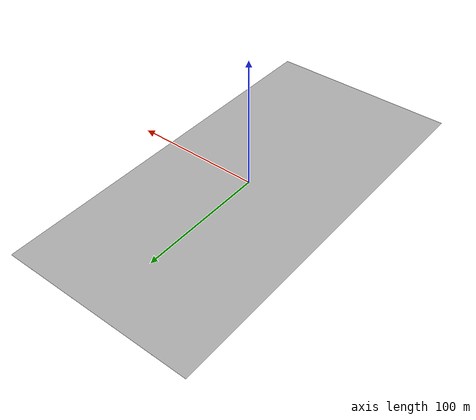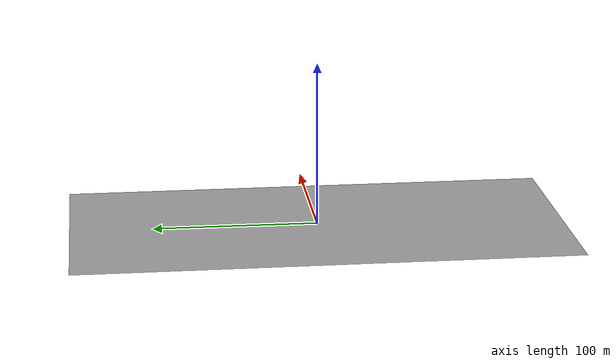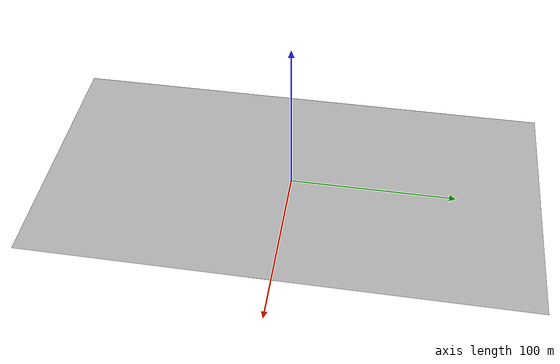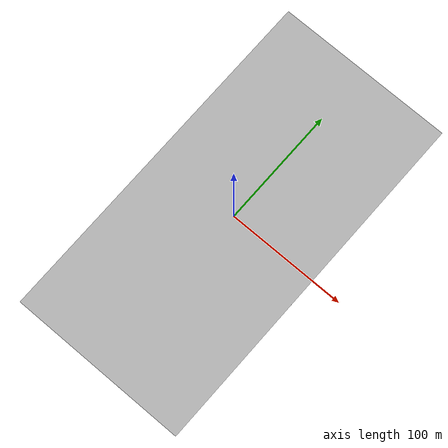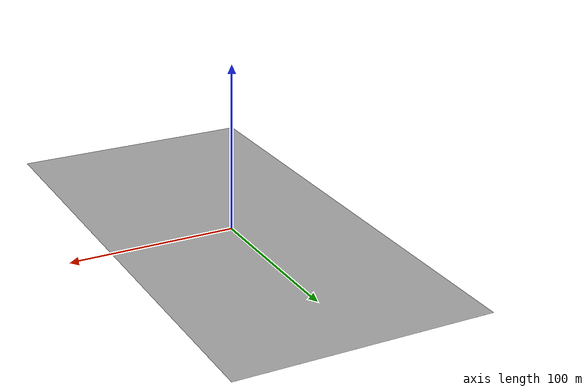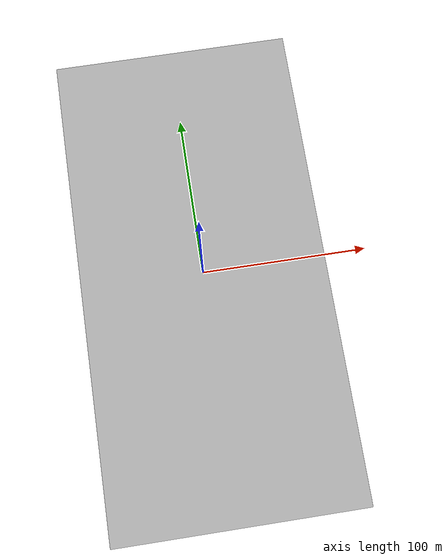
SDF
<?xml version="1.0" ?>
<sdf version='1.4'>
  <world name='default'>

    <physics name='default_physics' default='0' type='ode'>
      <gravity>0 0 -9.8066</gravity>
      <ode>
        <solver>
          <type>quick</type>
          <iters>10</iters>
          <sor>1.3</sor>
          <use_dynamic_moi_rescaling>0</use_dynamic_moi_rescaling>
        </solver>
        <constraints>
          <cfm>0</cfm>
          <erp>0.2</erp>
          <contact_max_correcting_vel>100</contact_max_correcting_vel>
          <contact_surface_layer>0.001</contact_surface_layer>
        </constraints>
      </ode>
      <max_step_size>0.004</max_step_size>
      <real_time_factor>1</real_time_factor>
      <real_time_update_rate>250</real_time_update_rate>
      <magnetic_field>6.0e-6 2.3e-5 -4.2e-5</magnetic_field>
    </physics>

    <spherical_coordinates>
      <surface_model>EARTH_WGS84</surface_model>
      <latitude_deg>0</latitude_deg>
      <longitude_deg>0</longitude_deg>
      <elevation>0</elevation>
      <heading_deg>0</heading_deg>
    </spherical_coordinates>

    <!-- A global light source -->

   <include>
      <uri>model://sun</uri>
   </include>

   <include>
      <pose>0 0 0 0 0 0</pose>
      <uri>model://roffa/model/roffa</uri>
    </include>

    <gui fullscreen='0'>
      <camera name='user_camera'>
        <pose>59.908 -1.39949 43.4967 0 0.559643 -3.11099</pose>
        <view_controller>orbit</view_controller>
      </camera>
    </gui>
  </world>
</sdf>

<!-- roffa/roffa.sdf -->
<sdf version='1.5'>
  <model name='roffa'>
    <static>true</static>
    <link name="link">
      <collision name="collision">
        <geometry>
          <box>
            <size>150 300 .005</size>
          </box>
        </geometry>
          <surface>
            <friction>
              <ode>
                <mu>0.2</mu>
                <mu2>0.2</mu2>
              </ode>
            </friction>
          </surface>
      </collision>
      <visual name="visual">
        <cast_shadows>false</cast_shadows>
        <geometry>
          <box>
            <size>150 300 .005</size>
          </box>
        </geometry>
        <material>
          <script>
            <name>roffa</name>
            <uri>model://roffa/materials/scripts</uri>
            <uri>model://roffa/materials/textures</uri>
          </script>
        </material>
      </visual>
    </link>
  </model>
</sdf>
